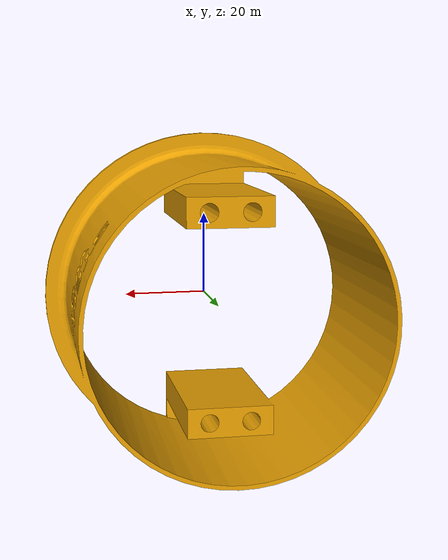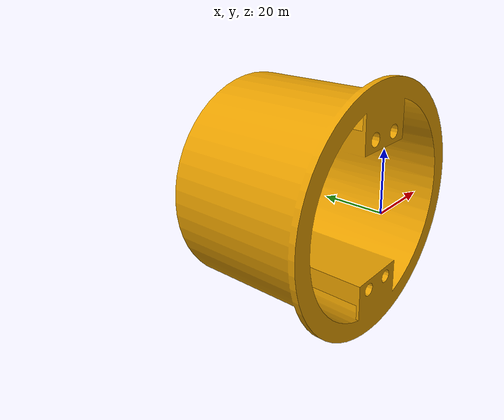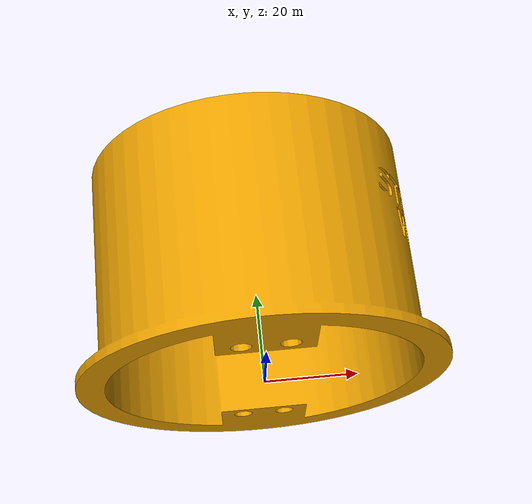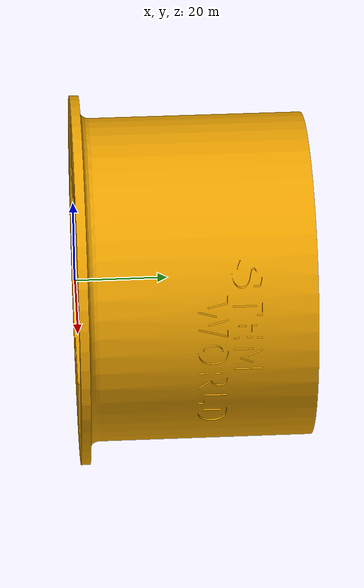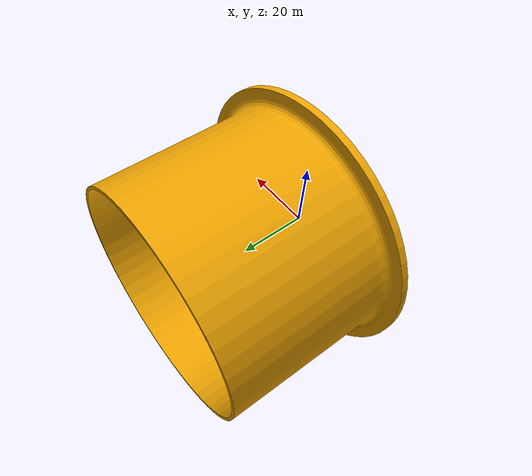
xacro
<?xml version="1.0"?>
<robot xmlns:xacro="http://www.ros.org/wiki/xacro" name="arm">
  <xacro:property name="m" value="2.5"/>
  <xacro:macro name="blk" params="n mesh">
    <link name="${n}">
      <visual><geometry><mesh filename="${mesh}"/></geometry></visual>
      <inertial><mass value="${m}"/><inertia ixx="1" ixy="0" ixz="0" iyy="1" iyz="0" izz="1"/></inertial>
    </link>
  </xacro:macro>
  <xacro:blk n="base" mesh="package://robot_description/meshes/base.stl"/>
</robot>
